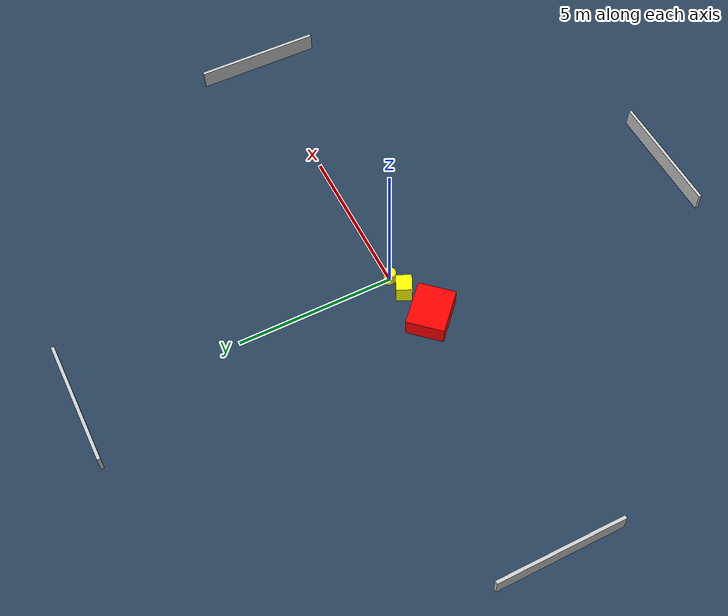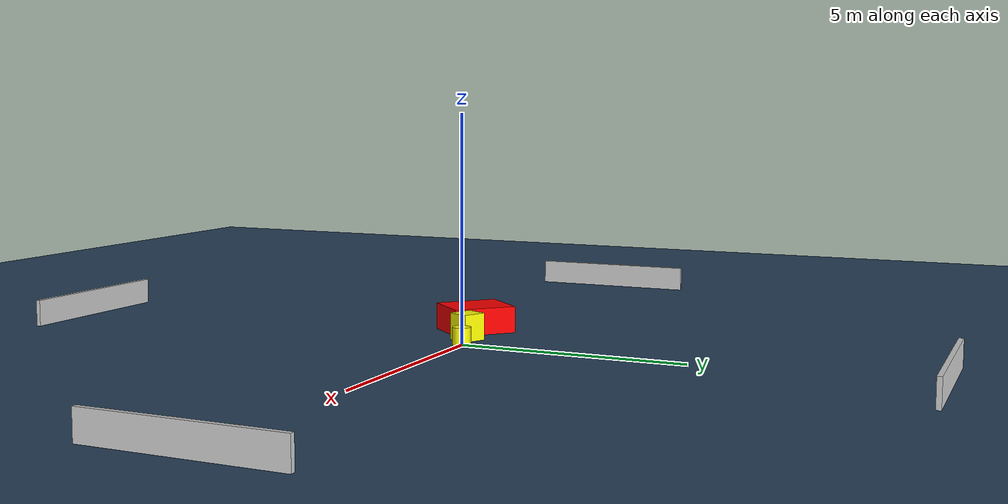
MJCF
<?xml version="1.0" ?>
<mujoco model="generated_environment">
  <option timestep="0.01" integrator="RK4" cone="elliptic"/>
  <default>
    <geom density="1"/>
  </default>
  <asset>
    <texture builtin="gradient" height="3072" name="skybox" rgb1="0.3 0.5 0.7" rgb2="0 0 0" type="skybox" width="512"/>
    <texture builtin="checker" height="300" name="groundplane" rgb1="0.2 0.3 0.4" rgb2="0.1 0.2 0.3" type="2d" width="300"/>
    <material name="groundplane" reflectance="0.2" texrepeat="5 5" texture="groundplane"/>
  </asset>
  <worldbody>
    <light dir="0 0 -1" directional="true" pos="0 0 1.5"/>
    <geom condim="3" friction="0.5 0.005 0.001" material="groundplane" name="floor" pos="0 0 0" size="0 0 0.05" type="plane"/>
    <body name="walls">
      <geom name="wall_1" condim="4" pos="-10.0 0.0 0.3" rgba="0.800000011920929 0.800000011920929 0.800000011920929 1.0" size="0.05 2.0 0.3" type="box"/>
      <geom name="wall_2" condim="4" pos="10.0 0.0 0.3" rgba="0.800000011920929 0.800000011920929 0.800000011920929 1.0" size="0.05 2.0 0.3" type="box"/>
      <geom name="wall_3" condim="4" pos="0.0 -10.0 0.3" rgba="0.800000011920929 0.800000011920929 0.800000011920929 1.0" size="2.0 0.05 0.3" type="box"/>
      <geom name="wall_4" condim="4" pos="0.0 10.0 0.3" rgba="0.800000011920929 0.800000011920929 0.800000011920929 1.0" size="2.0 0.05 0.3" type="box"/>
    </body>
    <body name="robot">
      <joint name="joint_x" type="slide" pos="0 0 0" axis="1 0 0"/>
      <joint name="joint_y" type="slide" pos="0 0 0" axis="0 1 0"/>
      <geom name="robot" type="cylinder" pos="0.0 0.0 0.2" size="0.2 0.2 0.0" mass="5.0" friction="1.0 0.005 0.0001" condim="4" rgba="1.0 1.0 0.0 1.0"/>
    </body>
    <body name="obstacle_1_movable">
      <geom name="obstacle_1_movable" condim="4" pos="-0.6356057590627363 -0.16012463578464434 0.3" euler="0 0 244.8816311907178" friction="0.0 0.005 0.001" rgba="1.0 1.0 0.0 1.0" size="0.2478165164160477 0.27447371933405623 0.3" type="box" mass="0.1"/>
      <joint type="free"/>
    </body>
    <body name="obstacle_2_static">
      <geom name="obstacle_2_static" condim="4" pos="-1.7754522542633944 -0.48069401056394756 0.3" euler="0 0 227.0489292316893" friction="0.0 0.005 0.001" rgba="1.0 0.0 0.0 1.0" size="0.5921048224830741 0.7241389483213263 0.3" type="box"/>
    </body>
  </worldbody>
  <actuator>
    <motor name="actuator_x" joint="joint_x" gear="1" ctrlrange="-1 1"/>
    <motor name="actuator_y" joint="joint_y" gear="1" ctrlrange="-1 1"/>
  </actuator>
</mujoco>
